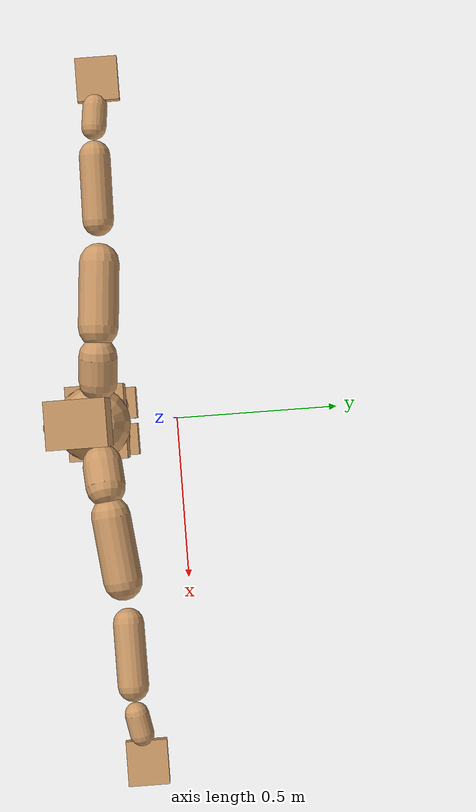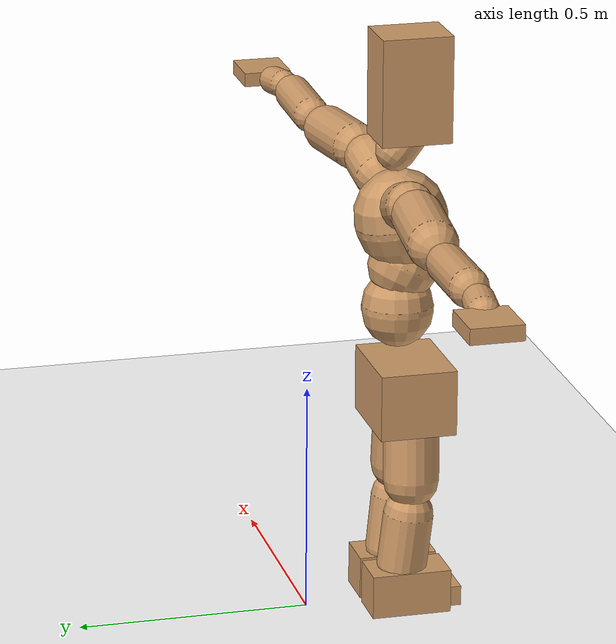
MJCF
<mujoco model="humanoid">
  <option integrator="implicitfast" />

  <visual>
    <global offwidth="1280" offheight="960" />
    <headlight active="1" ambient="0.34 0.34 0.34" diffuse="0.5 0.5 0.5" />
  </visual>

  <default>
    <joint damping="2" stiffness="2" armature="0.01" limited="true" solimplimit="0 .99 .01" />
    <geom condim="1" friction="0.7 0.005 0.0001" solimp=".99 .99 .003" solref="0.015 1" margin="0.001" rgba="0.8 0.6 .4 1" />
    <default class="smplcontact">
      <geom condim="3" friction="1. 0.005 0.0001" solref="0.015 1" solimp="0.98 0.98 0.001" priority="1" />
    </default>
    <default class="stiff_medium">
      <joint stiffness="10" />
    </default>
    <default class="stiff_medium_higher">
      <joint stiffness="50" />
    </default>
    <default class="stiff_high">
      <joint stiffness="100" />
    </default>
  </default>

  <asset>
    <texture type="skybox" builtin="gradient" rgb1="0.99 0.99 0.99" rgb2="0.608 0.828 0.892" width="100" />
    <texture builtin="flat" height="1278" mark="cross" markrgb="1 1 1" name="texgeom" random="0.01" rgb1="0.8 0.6 0.4" rgb2="0.8 0.6 0.4" type="cube" width="127" />
    <texture name="texplane" type="2d" builtin="checker" markrgb="1 1 1" rgb1="0.756 0.772 0.76" rgb2="0.6 0.6 0.6" width="100" height="100" />
    <material name="MatPlane" reflectance="0.5" texture="texplane" texrepeat="1 1" texuniform="true" />
    <material name="geom" texture="texgeom" texuniform="true" />
  </asset>

  <worldbody>
    <light name="tracking_light" pos="0 0 7" dir="0 0 -1" directional="true" cutoff="100" exponent="1" diffuse="1 1 1" specular="0.1 0.1 0.1" mode="trackcom" />
    <camera name="back" pos="0 3 2.4" xyaxes="-1 0 0 0 -1 2" mode="trackcom" />
    <camera name="side" pos="-3 0 2.4" xyaxes="0 -1 0 1 0 2" mode="trackcom" />
    <camera name="front_side" pos="-2.8 -2.8 0.8" xyaxes="0.5 -0.5 0 0.1 0.1 1" mode="trackcom" />
    <geom condim="3" name="floor" pos="0 0 0" rgba="1 1 1 1" size="100 100 .2" type="plane" material="MatPlane" />
    <body name="Pelvis" pos="-0.0018 -0.2233 0.49225" euler="90 0 0">
      <site name="Pelvis" size="0.01" />
      <freejoint name="Pelvis" />
      <geom type="box" pos="-0.0000 -0.0121 -0.0055" size="0.1069 0.0722 0.083" quat="1.0000 0.0000 0.0000 0.0000" density="3165.830099" name="Pelvis" />
      <body name="L_Hip" pos="0.03475 -0.0457 -0.0034">
        <joint name="L_Hip_x" type="hinge" pos="0 0 0" axis="1 0 0" stiffness="3.3281267346938783" range="-160.0 22.92" class="stiff_medium" damping="3.7390012674465325" armature="0.0018669335091027717"/>
        <joint name="L_Hip_y" type="hinge" pos="0 0 0" axis="0 1 0" stiffness="3.37791" range="-70.0 70.0" class="stiff_medium" damping="4.005630916019097" armature="0.004750001934737158"/>
        <joint name="L_Hip_z" type="hinge" pos="0 0 0" axis="0 0 1" stiffness="3.3736477551020405" range="-28.65 90.0" class="stiff_medium" damping="2.5063841398267126" armature="0.001862067978755205"/>
        <geom type="capsule" density="2040.816327" fromto="0.00345 -0.0375 -0.00045 0.0137 -0.1501 -0.0018" size="0.0615" name="L_Hip" />
        <body name="L_Knee" pos="0.01715 -0.1876 -0.00225">
          <joint name="L_Knee_x" type="hinge" pos="0 0 0" axis="1 0 0" range="-5.16 171.89" damping="2.234113816312467" armature="0.002158215061835119" stiffness="0.7227130408163265"/>
          <joint name="L_Knee_y" type="hinge" pos="0 0 0" axis="0 1 0" range="-4.58 6.88" damping="3.4591258985845017" armature="0.00542202401615855" stiffness="0.6896382205818496"/>
          <joint name="L_Knee_z" type="hinge" pos="0 0 0" axis="0 0 1" range="-6.88 4.58" damping="2.2483389527020083" armature="0.002131189565119328" stiffness="0.7412274770408163"/>
          <geom type="capsule" density="1234.567901" fromto="-0.00135 -0.0398 -0.00435 -0.00545 -0.1592 -0.0175" size="0.0541" name="L_Knee" />
          <body name="L_Ankle" pos="-0.0068 -0.199 -0.02185">
            <joint name="L_Ankle_x" type="hinge" pos="0 0 0" axis="1 0 0" range="-45.84 45.84" class="stiff_medium" damping="3.0200432285450654" armature="0.0050670339457116135" stiffness="5.0"/>
            <joint name="L_Ankle_y" type="hinge" pos="0 0 0" axis="0 1 0" range="-74.48 22.92" class="stiff_medium" damping="1.5371232923821347" armature="0.005250551146630429" stiffness="5.0"/>
            <joint name="L_Ankle_z" type="hinge" pos="0 0 0" axis="0 0 1" range="-4.58 4.58" class="stiff_medium" damping="3.4078637028280223" armature="0.006451963898362623" stiffness="5.0"/>
            <geom type="box" pos="0.01165 -0.01195 0.0121" size="0.0483 0.0464 0.085" quat="1.0000 0.0000 0.0000 0.0000" density="449.071558" name="L_Ankle" class="smplcontact" />
            <body name="L_Toe" pos="0.0132 -0.0279 0.05965">
              <joint name="L_Toe_x" type="hinge" pos="0 0 0" axis="1 0 0" range="-91.67 22.92" armature="0.007148590664291452" damping="1.1957082139294228" stiffness="1.0"/>
              <joint name="L_Toe_y" type="hinge" pos="0 0 0" axis="0 1 0" range="-4.58 4.58" armature="0.007990951927082678" damping="1.2641955487251706" stiffness="1.0"/>
              <joint name="L_Toe_z" type="hinge" pos="0 0 0" axis="0 0 1" range="-4.58 4.58" armature="0.00969416106055943" damping="1.3924195531921715" stiffness="1.0"/>
              <geom type="box" pos="-0.0015 0.00275 0.0124" size="0.0478 0.02 0.0496" quat="1.0000 0.0000 0.0000 0.0000" density="423.206892" name="L_Toe" class="smplcontact" />
            </body>
          </body>
        </body>
      </body>
      <body name="R_Hip" pos="-0.03385 -0.04525 -0.00215">
        <joint name="R_Hip_x" type="hinge" pos="0 0 0" axis="1 0 0" stiffness="3.3281267346938783" range="-160.0 22.92" class="stiff_medium" damping="3.7390012674465325" armature="0.0018669335091027717"/>
        <joint name="R_Hip_y" type="hinge" pos="0 0 0" axis="0 1 0" stiffness="3.37791" range="-70.0 70.0" class="stiff_medium" damping="4.005630916019097" armature="0.004750001934737158"/>
        <joint name="R_Hip_z" type="hinge" pos="0 0 0" axis="0 0 1" stiffness="3.3736477551020405" range="-90.0 28.65" class="stiff_medium" damping="2.5063841398267126" armature="0.001862067978755205"/>
        <geom type="capsule" density="2040.816327" fromto="-0.00385 -0.03825 -0.0009 -0.0153 -0.15305 -0.00355" size="0.0606" name="R_Hip" />
        <body name="R_Knee" pos="-0.01915 -0.1913 -0.00445">
          <joint name="R_Knee_x" type="hinge" pos="0 0 0" axis="1 0 0" range="-5.16 171.89" damping="2.234113816312467" armature="0.002158215061835119" stiffness="0.7227130408163265"/>
          <joint name="R_Knee_y" type="hinge" pos="0 0 0" axis="0 1 0" range="-6.88 4.58" damping="3.4591258985845017" armature="0.00542202401615855" stiffness="0.6896382205818496"/>
          <joint name="R_Knee_z" type="hinge" pos="0 0 0" axis="0 0 1" range="-4.58 6.88" damping="2.2483389527020083" armature="0.002131189565119328" stiffness="0.7412274770408163"/>
          <geom type="capsule" density="1234.567901" fromto="0.0016 -0.03985 -0.00425 0.0063 -0.15935 -0.0169" size="0.0541" name="R_Knee" />
          <body name="R_Ankle" pos="0.0079 -0.1992 -0.02115">
            <joint name="R_Ankle_x" type="hinge" pos="0 0 0" axis="1 0 0" range="-45.84 45.84" class="stiff_medium" damping="3.0200432285450654" armature="0.0050670339457116135" stiffness="5.0"/>
            <joint name="R_Ankle_y" type="hinge" pos="0 0 0" axis="0 1 0" range="-22.92 74.48" class="stiff_medium" damping="1.5371232923821347" armature="0.005250551146630429" stiffness="5.0"/>
            <joint name="R_Ankle_z" type="hinge" pos="0 0 0" axis="0 0 1" range="-4.58 4.58" class="stiff_medium" damping="3.4078637028280223" armature="0.006451963898362623" stiffness="5.0"/>
            <geom type="box" pos="-0.0106 -0.0087 0.0128" size="0.0483 0.0478 0.0865" quat="1.0000 0.0000 0.0000 0.0000" density="434.700981" name="R_Ankle" class="smplcontact" />
            <body name="R_Toe" pos="-0.0127 -0.02405 0.06165">
              <joint name="R_Toe_x" type="hinge" pos="0 0 0" axis="1 0 0" range="-91.67 22.92" armature="0.007148590664291452" damping="1.1957082139294228" stiffness="1.0"/>
              <joint name="R_Toe_y" type="hinge" pos="0 0 0" axis="0 1 0" range="-4.58 4.58" armature="0.007990951927082678" damping="1.2641955487251706" stiffness="1.0"/>
              <joint name="R_Toe_z" type="hinge" pos="0 0 0" axis="0 0 1" range="-4.58 4.58" armature="0.00969416106055943" damping="1.3924195531921715" stiffness="1.0"/>
              <geom type="box" pos="0.0021 0.00225 0.01135" size="0.0479 0.0216 0.0493" quat="1.0000 0.0000 0.0000 0.0000" density="407.384095" name="R_Toe" class="smplcontact" />
            </body>
          </body>
        </body>
      </body>
      <body name="Torso" pos="-0.0025 0.109 -0.0267">
        <joint name="Torso_x" type="hinge" pos="0 0 0" axis="1 0 0" range="-25.78 57.3" class="stiff_medium" damping="15.601174334598207" armature="0.010476265558935372" stiffness="10.325844081632653"/>
        <joint name="Torso_y" type="hinge" pos="0 0 0" axis="0 1 0" range="-57.3 57.3" class="stiff_high" damping="22.821338610517834" armature="0.012668353656497757" stiffness="102.77844897959183"/>
        <joint name="Torso_z" type="hinge" pos="0 0 0" axis="0 0 1" range="-34.38 34.38" class="stiff_high" damping="21.4148573120235" armature="0.011223378132891135" stiffness="102.15197872340424"/>
        <geom type="capsule" density="2040.816327" fromto="0.0025 0.0608 0.0005 0.003 0.0743 0.0006" size="0.0769" name="Torso" />
        <body name="Spine" pos="0.0055 0.1352 0.0011">
          <joint name="Spine_x" type="hinge" pos="0 0 0" axis="1 0 0" stiffness="10.390365918367348" range="-25.78 57.3" class="stiff_medium" damping="15.726774537984086" armature="0.010579519926301033"/>
          <joint name="Spine_y" type="hinge" pos="0 0 0" axis="0 1 0" stiffness="10.39918551020408" range="-57.3 57.3" class="stiff_high" damping="9.18896997574016" armature="0.012686866367473132"/>
          <joint name="Spine_z" type="hinge" pos="0 0 0" axis="0 0 1" stiffness="20.94420693877551" range="-34.38 34.38" class="stiff_high" damping="13.309204568844798" armature="0.011746481097584334"/>
          <geom type="capsule" density="2040.816327" fromto="0.0007 0.0238 0.0114 0.0008 0.0291 0.014" size="0.0755" name="Spine" />
          <body name="Chest" pos="0.0015 0.0529 0.0254">
            <joint name="Chest_x" type="hinge" pos="0 0 0" axis="1 0 0" stiffness="10.58973530612245" range="-25.78 57.3" class="stiff_medium" damping="15.92350290907025" armature="0.010641665414267275"/>
            <joint name="Chest_y" type="hinge" pos="0 0 0" axis="0 1 0" stiffness="11.123088958333334" range="-57.3 57.3" class="stiff_high" damping="9.50489338620591" armature="0.012690803368218224"/>
            <joint name="Chest_z" type="hinge" pos="0 0 0" axis="0 0 1" stiffness="21.003702448979592" range="-34.38 34.38" class="stiff_high" damping="13.458190566120908" armature="0.01197691572037479"/>
            <geom type="capsule" density="2040.816327" fromto="-0.0009 0.0682 -0.0173 -0.001 0.0833 -0.0212" size="0.1002" name="Chest" />
            <body name="Neck" pos="-0.0028 0.2139 -0.0429">
              <joint name="Neck_x" type="hinge" pos="0 0 0" axis="1 0 0" range="-28.65 57.3" class="stiff_medium_higher" damping="9.999999999999993" armature="0.009999999999999988" stiffness="50.0"/>
              <joint name="Neck_y" type="hinge" pos="0 0 0" axis="0 1 0" range="-40.11 40.11" class="stiff_medium_higher" damping="10.0" armature="0.01" stiffness="50.0"/>
              <joint name="Neck_z" type="hinge" pos="0 0 0" axis="0 0 1" range="-40.11 40.11" class="stiff_medium_higher" damping="9.999999999999984" armature="0.009999999999999967" stiffness="50.0"/>
              <geom type="capsule" density="1000" fromto="0.001 0.013 0.0103 0.0041 0.052 0.0411" size="0.0436" name="Neck" />
              <body name="Head" pos="0.0052 0.065 0.0513">
                <joint name="Head_x" type="hinge" pos="0 0 0" axis="1 0 0" range="-28.65 57.3" class="stiff_medium_higher" damping="1.9999999999999967" armature="0.009999999999999967" stiffness="50.0"/>
                <joint name="Head_y" type="hinge" pos="0 0 0" axis="0 1 0" range="-40.11 40.11" class="stiff_medium_higher" damping="2.0" armature="0.01" stiffness="50.0"/>
                <joint name="Head_z" type="hinge" pos="0 0 0" axis="0 0 1" range="-40.11 40.11" class="stiff_medium_higher" damping="1.9999999999999964" armature="0.009999999999999966" stiffness="50.0"/>
                <geom type="box" pos="-0.0042 0.0876 -0.0116" size="0.0606 0.1154 0.076" quat="1.0000 0.0000 0.0000 0.0000" density="1018.069894" name="Head" />
                <geom type="capsule" name="nose" size="0.02 0.01" pos="0 0.07 0.05" quat="1 0 0 0" mass="0" contype="0" conaffinity="0" />
              </body>
            </body>
            <body name="L_Thorax" pos="0.08668 0.13387 -0.03751">
              <joint name="L_Thorax_x" type="hinge" pos="0 0 0" axis="1 0 0" range="-10.89 4.58" class="stiff_medium_higher" damping="23.484953053517266" armature="0.01181490326234714" stiffness="58.352468877551026"/>
              <joint name="L_Thorax_y" type="hinge" pos="0 0 0" axis="0 1 0" range="-28.65 17.19" class="stiff_medium_higher" damping="24.4348841915211" armature="0.012759387174304939" stiffness="58.49257857142858"/>
              <joint name="L_Thorax_z" type="hinge" pos="0 0 0" axis="0 0 1" range="-31.51 40.11" class="stiff_medium_higher" damping="24.435380867856832" armature="0.012760243243334086" stiffness="58.491032142857144"/>
              <geom type="capsule" density="1000" fromto="0.02002 0.00671 -0.00198 0.08008 0.02684 -0.00781" size="0.0521" name="L_Thorax" />
              <body name="L_Shoulder" pos="0.1001 0.03355 -0.00979">
                <joint name="L_Shoulder_x" type="hinge" pos="0 0 0" axis="1 0 0" range="-97.4 97.4" class="stiff_medium" damping="6.925509502214039" armature="0.011436141131748654" stiffness="11.64988"/>
                <joint name="L_Shoulder_y" type="hinge" pos="0 0 0" axis="0 1 0" range="-108.86 80.21" class="stiff_medium" damping="7.316560324521945" armature="0.012722359703116887" stiffness="11.68809530612245"/>
                <joint name="L_Shoulder_z" type="hinge" pos="0 0 0" axis="0 0 1" range="-97.4 85.94" class="stiff_medium" damping="7.316164081346805" armature="0.012723435702067631" stiffness="11.685841020408162"/>
                <geom type="capsule" density="1000" fromto="0.05709 -0.00286 -0.00605 0.22847 -0.01122 -0.0242" size="0.0517" name="L_Shoulder" />
                <body name="L_Elbow" pos="0.28556 -0.01408 -0.03025">
                  <joint name="L_Elbow_x" type="hinge" pos="0 0 0" axis="1 0 0" range="-17.19 4.58" damping="5.601396344944911" armature="0.010847020977713142" stiffness="2.314046673469388"/>
                  <joint name="L_Elbow_y" type="hinge" pos="0 0 0" axis="0 1 0" range="-180.0 17.19" damping="6.023798480907977" armature="0.012542680731684354" stiffness="2.3144110204081634"/>
                  <joint name="L_Elbow_z" type="hinge" pos="0 0 0" axis="0 0 1" range="-100.84 4.58" damping="6.024346472417807" armature="0.012548321640758902" stiffness="2.313791530612245"/>
                  <geom type="capsule" density="1000" fromto="0.05478 0.00198 -0.00022 0.21934 0.00792 -0.00099" size="0.0405" name="L_Elbow" />
                  <body name="L_Wrist" pos="0.27412 0.0099 -0.00132">
                    <joint name="L_Wrist_x" type="hinge" pos="0 0 0" axis="1 0 0" range="-180.0 22.92" armature="0.010707540477697683" damping="2.190117585684785" stiffness="2.2398304489795917"/>
                    <joint name="L_Wrist_y" type="hinge" pos="0 0 0" axis="0 1 0" range="-17.19 17.19" armature="0.011962634992803468" damping="2.3179387965844693" stiffness="2.245675918367347"/>
                    <joint name="L_Wrist_z" type="hinge" pos="0 0 0" axis="0 0 1" range="-22.92 22.92" armature="0.012031856829646071" damping="2.323414855928779" stiffness="2.2433181632653056"/>
                    <geom type="capsule" density="1000" fromto="0.01848 -0.00176 -0.0033 0.07392 -0.00715 -0.0132" size="0.0318" name="L_Wrist" class="smplcontact" />
                    <body name="L_Hand" pos="0.0924 -0.00902 -0.01639">
                      <joint name="L_Hand_x" type="hinge" pos="0 0 0" axis="1 0 0" range="-17.19 17.19" armature="0.010091488937093059" damping="2.1071912899214786" stiffness="2.1999999999999997"/>
                      <joint name="L_Hand_y" type="hinge" pos="0 0 0" axis="0 1 0" range="-51.57 51.57" armature="0.011106432471592433" damping="2.2106176258006878" stiffness="2.1999999999999997"/>
                      <joint name="L_Hand_z" type="hinge" pos="0 0 0" axis="0 0 1" range="-91.67 91.67" armature="0.011376979537969312" damping="2.2373803871283258" stiffness="2.1999999999999997"/>
                      <geom type="box" pos="0.05423 0.0011 -0.00638" size="0.0585 0.0158 0.0538" quat="1.0000 0.0000 0.0000 0.0000" density="400.552564" name="L_Hand" class="smplcontact" />
                    </body>
                  </body>
                </body>
              </body>
            </body>
            <body name="R_Thorax" pos="-0.08998 0.13068 -0.04246">
              <joint name="R_Thorax_x" type="hinge" pos="0 0 0" axis="1 0 0" range="-10.89 4.58" class="stiff_medium_higher" damping="23.484953053517266" armature="0.01181490326234714" stiffness="58.352468877551026"/>
              <joint name="R_Thorax_y" type="hinge" pos="0 0 0" axis="0 1 0" range="-17.19 28.65" class="stiff_medium_higher" damping="24.4348841915211" armature="0.012759387174304939" stiffness="58.49257857142858"/>
              <joint name="R_Thorax_z" type="hinge" pos="0 0 0" axis="0 0 1" range="-40.11 31.51" class="stiff_medium_higher" damping="24.435380867856832" armature="0.012760243243334086" stiffness="58.491032142857144"/>
              <geom type="capsule" density="1000" fromto="-0.02112 0.00715 -0.00198 -0.08448 0.0286 -0.00803" size="0.0511" name="R_Thorax" />
              <body name="R_Shoulder" pos="-0.1056 0.03586 -0.01001">
                <joint name="R_Shoulder_x" type="hinge" pos="0 0 0" axis="1 0 0" range="-97.4 97.4" class="stiff_medium" damping="6.925509502214039" armature="0.011436141131748654" stiffness="11.64988"/>
                <joint name="R_Shoulder_y" type="hinge" pos="0 0 0" axis="0 1 0" range="-80.21 108.86" class="stiff_medium" damping="7.316560324521945" armature="0.012722359703116887" stiffness="11.68809530612245"/>
                <joint name="R_Shoulder_z" type="hinge" pos="0 0 0" axis="0 0 1" range="-85.94 97.4" class="stiff_medium" damping="7.316164081346805" armature="0.012723435702067631" stiffness="11.685841020408162"/>
                <geom type="capsule" density="1000" fromto="-0.05577 -0.00297 -0.00473 -0.2233 -0.01177 -0.01881" size="0.0531" name="R_Shoulder" />
                <body name="R_Elbow" pos="-0.27907 -0.01463 -0.02354">
                  <joint name="R_Elbow_x" type="hinge" pos="0 0 0" axis="1 0 0" range="-17.19 4.58" damping="5.601396344944911" armature="0.010847020977713142" stiffness="2.314046673469388"/>
                  <joint name="R_Elbow_y" type="hinge" pos="0 0 0" axis="0 1 0" range="-17.19 180.0" damping="6.023798480907977" armature="0.012542680731684354" stiffness="2.3144110204081634"/>
                  <joint name="R_Elbow_z" type="hinge" pos="0 0 0" axis="0 0 1" range="-4.58 100.84" damping="6.024346472417807" armature="0.012548321640758902" stiffness="2.313791530612245"/>
                  <geom type="capsule" density="1000" fromto="-0.05621 0.00176 -0.00121 -0.22462 0.00682 -0.00484" size="0.0408" name="R_Elbow" />
                  <body name="R_Wrist" pos="-0.28083 0.00858 -0.00616">
                    <joint name="R_Wrist_x" type="hinge" pos="0 0 0" axis="1 0 0" range="-180.0 22.92" armature="0.010707540477697683" damping="2.190117585684785" stiffness="2.2398304489795917"/>
                    <joint name="R_Wrist_y" type="hinge" pos="0 0 0" axis="0 1 0" range="-17.19 17.19" armature="0.011962634992803468" damping="2.3179387965844693" stiffness="2.245675918367347"/>
                    <joint name="R_Wrist_z" type="hinge" pos="0 0 0" axis="0 0 1" range="-22.92 22.92" armature="0.012031856829646071" damping="2.323414855928779" stiffness="2.2433181632653056"/>
                    <geom type="capsule" density="1000" fromto="-0.01859 -0.00132 -0.00231 -0.07447 -0.00539 -0.00913" size="0.0326" name="R_Wrist" class="smplcontact" />
                    <body name="R_Hand" pos="-0.09306 -0.00671 -0.01133">
                      <joint name="R_Hand_x" type="hinge" pos="0 0 0" axis="1 0 0" range="-17.19 17.19" armature="0.010091488937093059" damping="2.1071912899214786" stiffness="2.1999999999999997"/>
                      <joint name="R_Hand_y" type="hinge" pos="0 0 0" axis="0 1 0" range="-51.57 51.57" armature="0.011106432471592433" damping="2.2106176258006878" stiffness="2.1999999999999997"/>
                      <joint name="R_Hand_z" type="hinge" pos="0 0 0" axis="0 0 1" range="-91.67 91.67" armature="0.011376979537969312" damping="2.2373803871283258" stiffness="2.1999999999999997"/>
                      <geom type="box" pos="-0.05082 -0.00099 -0.00869" size="0.0569 0.0164 0.0546" quat="1.0000 0.0000 0.0000 0.0000" density="403.679611" name="R_Hand" class="smplcontact" />
                    </body>
                  </body>
                </body>
              </body>
            </body>
          </body>
        </body>
      </body>
    </body>
  </worldbody>
  <actuator>
    <general name="L_Hip_x" joint="L_Hip_x" biastype="affine" gainprm="95.62708680036044" biasprm="-71.66280919852072 -59.9062812244898 -0.49853350232620436" ctrllimited="true" ctrlrange="-1 1" forcerange="-119.8125624489796 119.8125624489796" />
    <general name="L_Hip_y" joint="L_Hip_y" biastype="affine" gainprm="74.28412068341248" biasprm="0.0 -60.80238 -0.8011261832038195" ctrllimited="true" ctrlrange="-1 1" forcerange="-121.60476 121.60476" />
    <general name="L_Hip_z" joint="L_Hip_z" biastype="affine" gainprm="62.8763546966517" biasprm="32.51128833240271 -60.72565959183673 -0.5012768279653426" ctrllimited="true" ctrlrange="-1 1" forcerange="-121.45131918367346 121.45131918367346" />
    <general name="L_Knee_x" joint="L_Knee_x" biastype="affine" gainprm="100.49667747567948" biasprm="94.63886492809961 -65.04417367346939 -0.5585284540781168" ctrllimited="true" ctrlrange="-1 1" forcerange="-130.08834734693878 130.08834734693878" />
    <general name="L_Knee_y" joint="L_Knee_y" biastype="affine" gainprm="6.207201182643047" biasprm="1.2457733612634387 -62.06743985236647 -0.8647814746461254" ctrllimited="true" ctrlrange="-1 1" forcerange="-124.13487970473294 124.13487970473294" />
    <general name="L_Knee_z" joint="L_Knee_z" biastype="affine" gainprm="6.671538692002082" biasprm="-1.3389650079934372 -66.71047293367346 -0.5620847381755021" ctrllimited="true" ctrlrange="-1 1" forcerange="-133.42094586734692 133.42094586734692" />
    <general name="L_Ankle_x" joint="L_Ankle_x" biastype="affine" gainprm="36.002651810139035" biasprm="0.0 -45.0 -1.0066810761816885" ctrllimited="true" ctrlrange="-1 1" forcerange="-90.0 90.0" />
    <general name="L_Ankle_y" joint="L_Ankle_y" biastype="affine" gainprm="38.24889055745574" biasprm="-20.24756465238622 -45.0 -1.0247488615880898" ctrllimited="true" ctrlrange="-1 1" forcerange="-90.0 90.0" />
    <general name="L_Ankle_z" joint="L_Ankle_z" biastype="affine" gainprm="3.5971235883603128" biasprm="0.0 -45.0 -1.1359545676093408" ctrllimited="true" ctrlrange="-1 1" forcerange="-90.0 90.0" />
    <general name="L_Toe_x" joint="L_Toe_x" biastype="affine" gainprm="35.99951021748544" biasprm="-21.598449493429825 -36.0 -0.47828328557176913" ctrllimited="true" ctrlrange="-1 1" forcerange="-72.0 72.0" />
    <general name="L_Toe_y" joint="L_Toe_y" biastype="affine" gainprm="2.8776988706882505" biasprm="0.0 -36.0 -0.5056782194900683" ctrllimited="true" ctrlrange="-1 1" forcerange="-72.0 72.0" />
    <general name="L_Toe_z" joint="L_Toe_z" biastype="affine" gainprm="2.8776988706882505" biasprm="0.0 -36.0 -0.5569678212768686" ctrllimited="true" ctrlrange="-1 1" forcerange="-72.0 72.0" />
    <general name="R_Hip_x" joint="R_Hip_x" biastype="affine" gainprm="95.62708680036044" biasprm="-71.66280919852072 -59.9062812244898 -0.49853350232620436" ctrllimited="true" ctrlrange="-1 1" forcerange="-119.8125624489796 119.8125624489796" />
    <general name="R_Hip_y" joint="R_Hip_y" biastype="affine" gainprm="74.28412068341248" biasprm="0.0 -60.80238 -0.8011261832038195" ctrllimited="true" ctrlrange="-1 1" forcerange="-121.60476 121.60476" />
    <general name="R_Hip_z" joint="R_Hip_z" biastype="affine" gainprm="62.8763546966517" biasprm="-32.51128833240271 -60.72565959183673 -0.5012768279653426" ctrllimited="true" ctrlrange="-1 1" forcerange="-121.45131918367346 121.45131918367346" />
    <general name="R_Knee_x" joint="R_Knee_x" biastype="affine" gainprm="100.49667747567948" biasprm="94.63886492809961 -65.04417367346939 -0.5585284540781168" ctrllimited="true" ctrlrange="-1 1" forcerange="-130.08834734693878 130.08834734693878" />
    <general name="R_Knee_y" joint="R_Knee_y" biastype="affine" gainprm="6.207201182643047" biasprm="-1.2457733612634387 -62.06743985236647 -0.8647814746461254" ctrllimited="true" ctrlrange="-1 1" forcerange="-124.13487970473294 124.13487970473294" />
    <general name="R_Knee_z" joint="R_Knee_z" biastype="affine" gainprm="6.671538692002082" biasprm="1.3389650079934372 -66.71047293367346 -0.5620847381755021" ctrllimited="true" ctrlrange="-1 1" forcerange="-133.42094586734692 133.42094586734692" />
    <general name="R_Ankle_x" joint="R_Ankle_x" biastype="affine" gainprm="36.002651810139035" biasprm="0.0 -45.0 -1.0066810761816885" ctrllimited="true" ctrlrange="-1 1" forcerange="-90.0 90.0" />
    <general name="R_Ankle_y" joint="R_Ankle_y" biastype="affine" gainprm="38.24889055745574" biasprm="20.24756465238622 -45.0 -1.0247488615880898" ctrllimited="true" ctrlrange="-1 1" forcerange="-90.0 90.0" />
    <general name="R_Ankle_z" joint="R_Ankle_z" biastype="affine" gainprm="3.5971235883603128" biasprm="0.0 -45.0 -1.1359545676093408" ctrllimited="true" ctrlrange="-1 1" forcerange="-90.0 90.0" />
    <general name="R_Toe_x" joint="R_Toe_x" biastype="affine" gainprm="35.99951021748544" biasprm="-21.598449493429825 -36.0 -0.47828328557176913" ctrllimited="true" ctrlrange="-1 1" forcerange="-72.0 72.0" />
    <general name="R_Toe_y" joint="R_Toe_y" biastype="affine" gainprm="2.8776988706882505" biasprm="0.0 -36.0 -0.5056782194900683" ctrllimited="true" ctrlrange="-1 1" forcerange="-72.0 72.0" />
    <general name="R_Toe_z" joint="R_Toe_z" biastype="affine" gainprm="2.8776988706882505" biasprm="0.0 -36.0 -0.5569678212768686" ctrllimited="true" ctrlrange="-1 1" forcerange="-72.0 72.0" />
    <general name="Torso_x" joint="Torso_x" biastype="affine" gainprm="179.67210854115288" biasprm="68.16640420338393 -247.8202579591837 -4.160313155892855" ctrllimited="true" ctrlrange="-1 1" forcerange="-371.73038693877555 371.73038693877555" />
    <general name="Torso_y" joint="Torso_y" biastype="affine" gainprm="246.68644747989222" biasprm="0.0 -246.6682775510204 -4.564267722103567" ctrllimited="true" ctrlrange="-1 1" forcerange="-370.0024163265306 370.0024163265306" />
    <general name="Torso_z" joint="Torso_z" biastype="affine" gainprm="147.10968486781817" biasprm="0.0 -245.16474893617018 -4.2829714624047" ctrllimited="true" ctrlrange="-1 1" forcerange="-367.74712340425526 367.74712340425526" />
    <general name="Spine_x" joint="Spine_x" biastype="affine" gainprm="180.79480363139655" biasprm="68.5923472612135 -249.36878204081634 -4.193806543462423" ctrllimited="true" ctrlrange="-1 1" forcerange="-374.0531730612245 374.0531730612245" />
    <general name="Spine_y" joint="Spine_y" biastype="affine" gainprm="249.59883668861366" biasprm="0.0 -249.58045224489794 -4.59448498787008" ctrllimited="true" ctrlrange="-1 1" forcerange="-374.3706783673469 374.3706783673469" />
    <general name="Spine_z" joint="Spine_z" biastype="affine" gainprm="150.8093979712465" biasprm="0.0 -251.3304832653061 -4.436401522948266" ctrllimited="true" ctrlrange="-1 1" forcerange="-376.9957248979592 376.9957248979592" />
    <general name="Chest_x" joint="Chest_x" biastype="affine" gainprm="184.26387773258654" biasprm="69.90849092598852 -254.15364734693878 -4.246267442418733" ctrllimited="true" ctrlrange="-1 1" forcerange="-381.2304710204082 381.2304710204082" />
    <general name="Chest_y" joint="Chest_y" biastype="affine" gainprm="266.97379921338467" biasprm="0.0 -266.954135 -4.752446693102955" ctrllimited="true" ctrlrange="-1 1" forcerange="-400.43120250000004 400.43120250000004" />
    <general name="Chest_z" joint="Chest_z" biastype="affine" gainprm="151.23779719887534" biasprm="0.0 -252.0444293877551 -4.486063522040303" ctrllimited="true" ctrlrange="-1 1" forcerange="-378.06664408163266 378.06664408163266" />
    <general name="Neck_x" joint="Neck_x" biastype="affine" gainprm="27.00198885760427" biasprm="9.000662952534757 -36.0 -0.7999999999999995" ctrllimited="true" ctrlrange="-1 1" forcerange="-72.0 72.0" />
    <general name="Neck_y" joint="Neck_y" biastype="affine" gainprm="25.20185626709732" biasprm="0.0 -36.0 -0.8" ctrllimited="true" ctrlrange="-1 1" forcerange="-72.0 72.0" />
    <general name="Neck_z" joint="Neck_z" biastype="affine" gainprm="25.20185626709732" biasprm="0.0 -36.0 -0.7999999999999987" ctrllimited="true" ctrlrange="-1 1" forcerange="-72.0 72.0" />
    <general name="Head_x" joint="Head_x" biastype="affine" gainprm="18.001325905069514" biasprm="6.000441968356505 -24.0 -0.7999999999999987" ctrllimited="true" ctrlrange="-1 1" forcerange="-48.0 48.0" />
    <general name="Head_y" joint="Head_y" biastype="affine" gainprm="16.801237511398213" biasprm="0.0 -24.0 -0.8" ctrllimited="true" ctrlrange="-1 1" forcerange="-48.0 48.0" />
    <general name="Head_z" joint="Head_z" biastype="affine" gainprm="16.801237511398213" biasprm="0.0 -24.0 -0.7999999999999986" ctrllimited="true" ctrlrange="-1 1" forcerange="-48.0 48.0" />
    <general name="L_Thorax_x" joint="L_Thorax_x" biastype="affine" gainprm="18.906370442093692" biasprm="-7.711648189373708 -140.04592530612246 -1.8787962442813815" ctrllimited="true" ctrlrange="-1 1" forcerange="-280.0918506122449 280.0918506122449" />
    <general name="L_Thorax_y" joint="L_Thorax_y" biastype="affine" gainprm="56.157011727582464" biasprm="-14.039252931895616 -140.38218857142857 -1.954790735321688" ctrllimited="true" ctrlrange="-1 1" forcerange="-280.76437714285714 280.76437714285714" />
    <general name="L_Thorax_z" joint="L_Thorax_z" biastype="affine" gainprm="87.73688584405964" biasprm="10.535286487837375 -140.37847714285715 -1.9548304694285468" ctrllimited="true" ctrlrange="-1 1" forcerange="-280.7569542857143 280.7569542857143" />
    <general name="L_Shoulder_x" joint="L_Shoulder_x" biastype="affine" gainprm="95.06026349386505" biasprm="0.0 -55.91942399999999 -1.846802533923744" ctrllimited="true" ctrlrange="-1 1" forcerange="-111.83884799999998 111.83884799999998" />
    <general name="L_Shoulder_y" joint="L_Shoulder_y" biastype="affine" gainprm="92.56674184278414" biasprm="-14.026747521001564 -56.10285746938776 -1.9510827532058521" ctrllimited="true" ctrlrange="-1 1" forcerange="-112.20571493877551 112.20571493877551" />
    <general name="L_Shoulder_z" joint="L_Shoulder_z" biastype="affine" gainprm="89.7440800375507" biasprm="-5.609616871551944 -56.09203689795918 -1.9509770883591484" ctrllimited="true" ctrlrange="-1 1" forcerange="-112.18407379591837 112.18407379591837" />
    <general name="L_Elbow_x" joint="L_Elbow_x" biastype="affine" gainprm="15.82633724808071" biasprm="-9.167207749117953 -83.30568024489797 -0.8962234151911859" ctrllimited="true" ctrlrange="-1 1" forcerange="-166.61136048979594 166.61136048979594" />
    <general name="L_Elbow_y" joint="L_Elbow_y" biastype="affine" gainprm="143.37559998082332" biasprm="-118.37811974683223 -83.31879673469388 -0.9638077569452763" ctrllimited="true" ctrlrange="-1 1" forcerange="-166.63759346938775 166.63759346938775" />
    <general name="L_Elbow_z" joint="L_Elbow_z" biastype="affine" gainprm="76.62969758228138" biasprm="-69.9713023076305 -83.29649510204082 -0.9638954355868491" ctrllimited="true" ctrlrange="-1 1" forcerange="-166.59299020408164 166.59299020408164" />
    <general name="L_Wrist_x" joint="L_Wrist_x" biastype="affine" gainprm="23.797899177015026" biasprm="-18.421910125791054 -13.43898269387755 -0.8760470342739141" ctrllimited="true" ctrlrange="-1 1" forcerange="-26.8779653877551 26.8779653877551" />
    <general name="L_Wrist_y" joint="L_Wrist_y" biastype="affine" gainprm="4.042514408369691" biasprm="0.0 -13.474055510204082 -0.9271755186337878" ctrllimited="true" ctrlrange="-1 1" forcerange="-26.948111020408163 26.948111020408163" />
    <general name="L_Wrist_z" joint="L_Wrist_z" biastype="affine" gainprm="5.384360182093428" biasprm="0.0 -13.459908979591834 -0.9293659423715117" ctrllimited="true" ctrlrange="-1 1" forcerange="-26.919817959183668 26.919817959183668" />
    <general name="L_Hand_x" joint="L_Hand_x" biastype="affine" gainprm="3.9602916991152934" biasprm="0.0 -13.2 -0.8428765159685915" ctrllimited="true" ctrlrange="-1 1" forcerange="-26.4 26.4" />
    <general name="L_Hand_y" joint="L_Hand_y" biastype="affine" gainprm="11.880875097345879" biasprm="0.0 -13.2 -0.8842470503202752" ctrllimited="true" ctrlrange="-1 1" forcerange="-26.4 26.4" />
    <general name="L_Hand_z" joint="L_Hand_z" biastype="affine" gainprm="21.11925189400226" biasprm="0.0 -13.2 -0.8949521548513304" ctrllimited="true" ctrlrange="-1 1" forcerange="-26.4 26.4" />
    <general name="R_Thorax_x" joint="R_Thorax_x" biastype="affine" gainprm="18.906370442093692" biasprm="-7.711648189373708 -140.04592530612246 -1.8787962442813815" ctrllimited="true" ctrlrange="-1 1" forcerange="-280.0918506122449 280.0918506122449" />
    <general name="R_Thorax_y" joint="R_Thorax_y" biastype="affine" gainprm="56.157011727582464" biasprm="14.039252931895607 -140.38218857142857 -1.954790735321688" ctrllimited="true" ctrlrange="-1 1" forcerange="-280.76437714285714 280.76437714285714" />
    <general name="R_Thorax_z" joint="R_Thorax_z" biastype="affine" gainprm="87.73688584405964" biasprm="-10.535286487837375 -140.37847714285715 -1.9548304694285468" ctrllimited="true" ctrlrange="-1 1" forcerange="-280.7569542857143 280.7569542857143" />
    <general name="R_Shoulder_x" joint="R_Shoulder_x" biastype="affine" gainprm="95.06026349386505" biasprm="0.0 -55.91942399999999 -1.846802533923744" ctrllimited="true" ctrlrange="-1 1" forcerange="-111.83884799999998 111.83884799999998" />
    <general name="R_Shoulder_y" joint="R_Shoulder_y" biastype="affine" gainprm="92.56674184278414" biasprm="14.026747521001564 -56.10285746938776 -1.9510827532058521" ctrllimited="true" ctrlrange="-1 1" forcerange="-112.20571493877551 112.20571493877551" />
    <general name="R_Shoulder_z" joint="R_Shoulder_z" biastype="affine" gainprm="89.7440800375507" biasprm="5.609616871551932 -56.09203689795918 -1.9509770883591484" ctrllimited="true" ctrlrange="-1 1" forcerange="-112.18407379591837 112.18407379591837" />
    <general name="R_Elbow_x" joint="R_Elbow_x" biastype="affine" gainprm="15.82633724808071" biasprm="-9.167207749117953 -83.30568024489797 -0.8962234151911859" ctrllimited="true" ctrlrange="-1 1" forcerange="-166.61136048979594 166.61136048979594" />
    <general name="R_Elbow_y" joint="R_Elbow_y" biastype="affine" gainprm="143.37559998082332" biasprm="118.37811974683223 -83.31879673469388 -0.9638077569452763" ctrllimited="true" ctrlrange="-1 1" forcerange="-166.63759346938775 166.63759346938775" />
    <general name="R_Elbow_z" joint="R_Elbow_z" biastype="affine" gainprm="76.62969758228138" biasprm="69.97130230763048 -83.29649510204082 -0.9638954355868491" ctrllimited="true" ctrlrange="-1 1" forcerange="-166.59299020408164 166.59299020408164" />
    <general name="R_Wrist_x" joint="R_Wrist_x" biastype="affine" gainprm="23.797899177015026" biasprm="-18.421910125791054 -13.43898269387755 -0.8760470342739141" ctrllimited="true" ctrlrange="-1 1" forcerange="-26.8779653877551 26.8779653877551" />
    <general name="R_Wrist_y" joint="R_Wrist_y" biastype="affine" gainprm="4.042514408369691" biasprm="0.0 -13.474055510204082 -0.9271755186337878" ctrllimited="true" ctrlrange="-1 1" forcerange="-26.948111020408163 26.948111020408163" />
    <general name="R_Wrist_z" joint="R_Wrist_z" biastype="affine" gainprm="5.384360182093428" biasprm="0.0 -13.459908979591834 -0.9293659423715117" ctrllimited="true" ctrlrange="-1 1" forcerange="-26.919817959183668 26.919817959183668" />
    <general name="R_Hand_x" joint="R_Hand_x" biastype="affine" gainprm="3.9602916991152934" biasprm="0.0 -13.2 -0.8428765159685915" ctrllimited="true" ctrlrange="-1 1" forcerange="-26.4 26.4" />
    <general name="R_Hand_y" joint="R_Hand_y" biastype="affine" gainprm="11.880875097345879" biasprm="0.0 -13.2 -0.8842470503202752" ctrllimited="true" ctrlrange="-1 1" forcerange="-26.4 26.4" />
    <general name="R_Hand_z" joint="R_Hand_z" biastype="affine" gainprm="21.11925189400226" biasprm="0.0 -13.2 -0.8949521548513304" ctrllimited="true" ctrlrange="-1 1" forcerange="-26.4 26.4" />
  </actuator>
  <contact>
    <exclude body1="Torso" body2="Chest" />
    <exclude body1="Head" body2="Chest" />
    <exclude body1="R_Knee" body2="R_Toe" />
    <exclude body1="R_Knee" body2="L_Ankle" />
    <exclude body1="R_Knee" body2="L_Toe" />
    <exclude body1="L_Knee" body2="L_Toe" />
    <exclude body1="L_Knee" body2="R_Ankle" />
    <exclude body1="L_Knee" body2="R_Toe" />
    <exclude body1="L_Shoulder" body2="Chest" />
    <exclude body1="R_Shoulder" body2="Chest" />
  </contact>
  <sensor>
    <framelinvel name="sensor_Pelvis_framelinvel" objtype="xbody" objname="Pelvis" />
    <framelinvel name="sensor_L_Hip_framelinvel" objtype="xbody" objname="L_Hip" />
    <framelinvel name="sensor_L_Knee_framelinvel" objtype="xbody" objname="L_Knee" />
    <framelinvel name="sensor_L_Ankle_framelinvel" objtype="xbody" objname="L_Ankle" />
    <framelinvel name="sensor_L_Toe_framelinvel" objtype="xbody" objname="L_Toe" />
    <framelinvel name="sensor_R_Hip_framelinvel" objtype="xbody" objname="R_Hip" />
    <framelinvel name="sensor_R_Knee_framelinvel" objtype="xbody" objname="R_Knee" />
    <framelinvel name="sensor_R_Ankle_framelinvel" objtype="xbody" objname="R_Ankle" />
    <framelinvel name="sensor_R_Toe_framelinvel" objtype="xbody" objname="R_Toe" />
    <framelinvel name="sensor_Torso_framelinvel" objtype="xbody" objname="Torso" />
    <framelinvel name="sensor_Spine_framelinvel" objtype="xbody" objname="Spine" />
    <framelinvel name="sensor_Chest_framelinvel" objtype="xbody" objname="Chest" />
    <framelinvel name="sensor_Neck_framelinvel" objtype="xbody" objname="Neck" />
    <framelinvel name="sensor_Head_framelinvel" objtype="xbody" objname="Head" />
    <framelinvel name="sensor_L_Thorax_framelinvel" objtype="xbody" objname="L_Thorax" />
    <framelinvel name="sensor_L_Shoulder_framelinvel" objtype="xbody" objname="L_Shoulder" />
    <framelinvel name="sensor_L_Elbow_framelinvel" objtype="xbody" objname="L_Elbow" />
    <framelinvel name="sensor_L_Wrist_framelinvel" objtype="xbody" objname="L_Wrist" />
    <framelinvel name="sensor_L_Hand_framelinvel" objtype="xbody" objname="L_Hand" />
    <framelinvel name="sensor_R_Thorax_framelinvel" objtype="xbody" objname="R_Thorax" />
    <framelinvel name="sensor_R_Shoulder_framelinvel" objtype="xbody" objname="R_Shoulder" />
    <framelinvel name="sensor_R_Elbow_framelinvel" objtype="xbody" objname="R_Elbow" />
    <framelinvel name="sensor_R_Wrist_framelinvel" objtype="xbody" objname="R_Wrist" />
    <framelinvel name="sensor_R_Hand_framelinvel" objtype="xbody" objname="R_Hand" />
    <frameangvel name="sensor_Pelvis_frameangvel" objtype="xbody" objname="Pelvis" />
    <frameangvel name="sensor_L_Hip_frameangvel" objtype="xbody" objname="L_Hip" />
    <frameangvel name="sensor_L_Knee_frameangvel" objtype="xbody" objname="L_Knee" />
    <frameangvel name="sensor_L_Ankle_frameangvel" objtype="xbody" objname="L_Ankle" />
    <frameangvel name="sensor_L_Toe_frameangvel" objtype="xbody" objname="L_Toe" />
    <frameangvel name="sensor_R_Hip_frameangvel" objtype="xbody" objname="R_Hip" />
    <frameangvel name="sensor_R_Knee_frameangvel" objtype="xbody" objname="R_Knee" />
    <frameangvel name="sensor_R_Ankle_frameangvel" objtype="xbody" objname="R_Ankle" />
    <frameangvel name="sensor_R_Toe_frameangvel" objtype="xbody" objname="R_Toe" />
    <frameangvel name="sensor_Torso_frameangvel" objtype="xbody" objname="Torso" />
    <frameangvel name="sensor_Spine_frameangvel" objtype="xbody" objname="Spine" />
    <frameangvel name="sensor_Chest_frameangvel" objtype="xbody" objname="Chest" />
    <frameangvel name="sensor_Neck_frameangvel" objtype="xbody" objname="Neck" />
    <frameangvel name="sensor_Head_frameangvel" objtype="xbody" objname="Head" />
    <frameangvel name="sensor_L_Thorax_frameangvel" objtype="xbody" objname="L_Thorax" />
    <frameangvel name="sensor_L_Shoulder_frameangvel" objtype="xbody" objname="L_Shoulder" />
    <frameangvel name="sensor_L_Elbow_frameangvel" objtype="xbody" objname="L_Elbow" />
    <frameangvel name="sensor_L_Wrist_frameangvel" objtype="xbody" objname="L_Wrist" />
    <frameangvel name="sensor_L_Hand_frameangvel" objtype="xbody" objname="L_Hand" />
    <frameangvel name="sensor_R_Thorax_frameangvel" objtype="xbody" objname="R_Thorax" />
    <frameangvel name="sensor_R_Shoulder_frameangvel" objtype="xbody" objname="R_Shoulder" />
    <frameangvel name="sensor_R_Elbow_frameangvel" objtype="xbody" objname="R_Elbow" />
    <frameangvel name="sensor_R_Wrist_frameangvel" objtype="xbody" objname="R_Wrist" />
    <frameangvel name="sensor_R_Hand_frameangvel" objtype="xbody" objname="R_Hand" />
    <subtreelinvel name="Chest_subtreelinvel" body="Chest" />
    <gyro name="Pelvis_gyro" site="Pelvis" />
  </sensor>
</mujoco>
